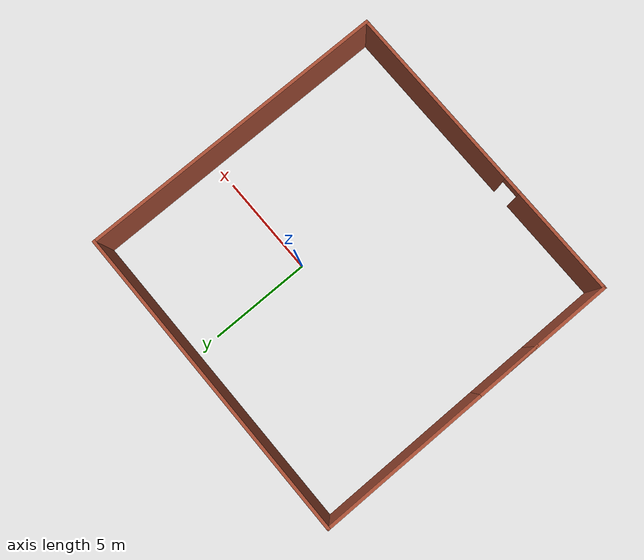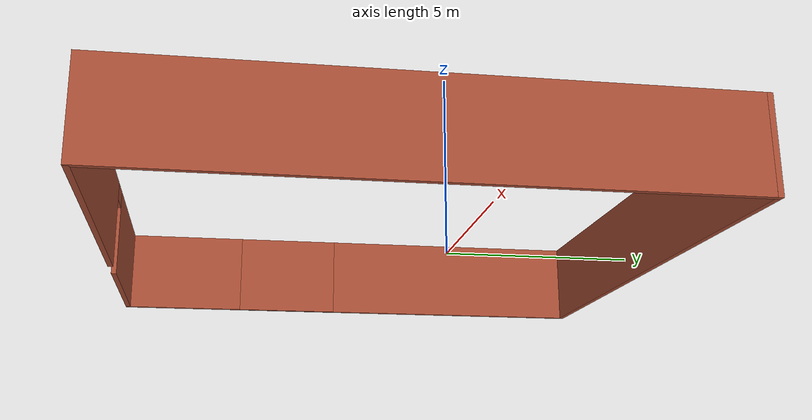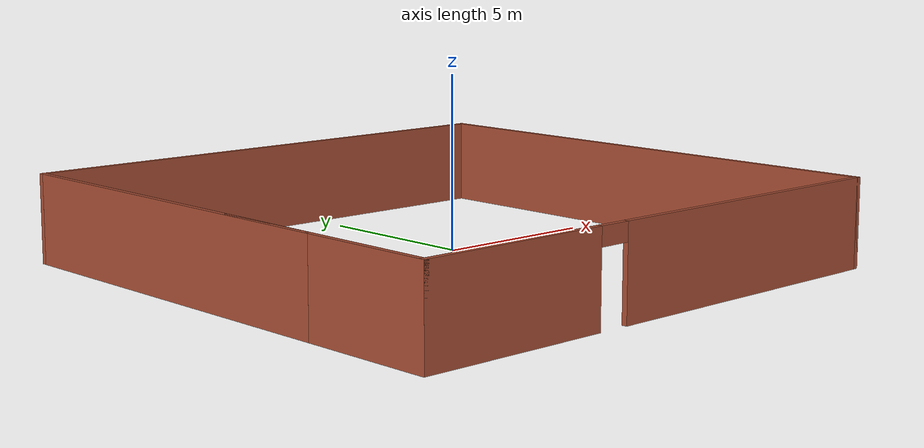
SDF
<?xml version='1.0'?>
<sdf version='1.7'>
  <model name='building.model'>
    <pose>-1.55657 -1.4644 0 0 -0 0</pose>
    <link name='Wall_25'>
      <collision name='Wall_25_Collision'>
        <geometry>
          <box>
            <size>4 0.15 2.5</size>
          </box>
        </geometry>
        <pose>0 0 1.25 0 -0 0</pose>
      </collision>
      <visual name='Wall_25_Visual'>
        <pose>0 0 1.25 0 -0 0</pose>
        <geometry>
          <box>
            <size>4 0.15 2.5</size>
          </box>
        </geometry>
        <material>
          <script>
            <uri>file://media/materials/scripts/gazebo.material</uri>
            <name>Gazebo/Bricks</name>
          </script>
          <ambient>1 1 1 1</ambient>
        </material>
        <meta>
          <layer>0</layer>
        </meta>
      </visual>
      <pose>-7.8 -5.75 0 0 -0 -1.5708</pose>
    </link>
    <link name='Wall_26'>
      <pose>-0 -7.675 0 0 -0 0</pose>
      <visual name='Wall_26_Visual_0'>
        <pose>-5.14489 0 1.25 0 -0 0</pose>
        <geometry>
          <box>
            <size>5.46021 0.15 2.5</size>
          </box>
        </geometry>
        <material>
          <script>
            <uri>file://media/materials/scripts/gazebo.material</uri>
            <name>Gazebo/Bricks</name>
          </script>
          <ambient>1 1 1 1</ambient>
        </material>
        <meta>
          <layer>0</layer>
        </meta>
      </visual>
      <collision name='Wall_26_Collision_0'>
        <geometry>
          <box>
            <size>5.46021 0.15 2.5</size>
          </box>
        </geometry>
        <pose>-5.14489 0 1.25 0 -0 0</pose>
      </collision>
      <visual name='Wall_26_Visual_1'>
        <pose>3.18011 0 1.25 0 -0 0</pose>
        <geometry>
          <box>
            <size>9.38978 0.15 2.5</size>
          </box>
        </geometry>
        <material>
          <script>
            <uri>file://media/materials/scripts/gazebo.material</uri>
            <name>Gazebo/Bricks</name>
          </script>
          <ambient>1 1 1 1</ambient>
        </material>
        <meta>
          <layer>0</layer>
        </meta>
      </visual>
      <collision name='Wall_26_Collision_1'>
        <geometry>
          <box>
            <size>9.38978 0.15 2.5</size>
          </box>
        </geometry>
        <pose>3.18011 0 1.25 0 -0 0</pose>
      </collision>
      <visual name='Wall_26_Visual_2'>
        <pose>-1.96479 0 2.25 0 -0 0</pose>
        <geometry>
          <box>
            <size>0.9 0.15 0.5</size>
          </box>
        </geometry>
        <material>
          <script>
            <uri>file://media/materials/scripts/gazebo.material</uri>
            <name>Gazebo/Bricks</name>
          </script>
          <ambient>1 1 1 1</ambient>
        </material>
        <meta>
          <layer>0</layer>
        </meta>
      </visual>
      <collision name='Wall_26_Collision_2'>
        <geometry>
          <box>
            <size>0.9 0.15 0.5</size>
          </box>
        </geometry>
        <pose>-1.96479 0 2.25 0 -0 0</pose>
      </collision>
    </link>
    <link name='Wall_27'>
      <collision name='Wall_27_Collision'>
        <geometry>
          <box>
            <size>15.5 0.15 2.5</size>
          </box>
        </geometry>
        <pose>0 0 1.25 0 -0 0</pose>
      </collision>
      <visual name='Wall_27_Visual'>
        <pose>0 0 1.25 0 -0 0</pose>
        <geometry>
          <box>
            <size>15.5 0.15 2.5</size>
          </box>
        </geometry>
        <material>
          <script>
            <uri>file://media/materials/scripts/gazebo.material</uri>
            <name>Gazebo/Bricks</name>
          </script>
          <ambient>1 1 1 1</ambient>
        </material>
        <meta>
          <layer>0</layer>
        </meta>
      </visual>
      <pose>7.8 0 0 0 -0 1.5708</pose>
    </link>
    <link name='Wall_28'>
      <collision name='Wall_28_Collision'>
        <geometry>
          <box>
            <size>15.75 0.15 2.5</size>
          </box>
        </geometry>
        <pose>0 0 1.25 0 -0 0</pose>
      </collision>
      <visual name='Wall_28_Visual'>
        <pose>0 0 1.25 0 -0 0</pose>
        <geometry>
          <box>
            <size>15.75 0.15 2.5</size>
          </box>
        </geometry>
        <material>
          <script>
            <uri>file://media/materials/scripts/gazebo.material</uri>
            <name>Gazebo/Bricks</name>
          </script>
          <ambient>1 1 1 1</ambient>
        </material>
        <meta>
          <layer>0</layer>
        </meta>
      </visual>
      <pose>-0 7.675 0 0 -0 3.14159</pose>
    </link>
    <link name='Wall_29'>
      <collision name='Wall_29_Collision'>
        <geometry>
          <box>
            <size>11.65 0.15 2.5</size>
          </box>
        </geometry>
        <pose>0 0 1.25 0 -0 0</pose>
      </collision>
      <visual name='Wall_29_Visual'>
        <pose>0 0 1.25 0 -0 0</pose>
        <geometry>
          <box>
            <size>11.65 0.15 2.5</size>
          </box>
        </geometry>
        <material>
          <script>
            <uri>file://media/materials/scripts/gazebo.material</uri>
            <name>Gazebo/Bricks</name>
          </script>
          <ambient>1 1 1 1</ambient>
        </material>
        <meta>
          <layer>0</layer>
        </meta>
      </visual>
      <pose>-7.8 1.925 0 0 -0 -1.5708</pose>
    </link>
    <link name='Wall_30'>
      <collision name='Wall_30_Collision'>
        <geometry>
          <box>
            <size>3.25 0.15 2.5</size>
          </box>
        </geometry>
        <pose>0 0 1.25 0 -0 0</pose>
      </collision>
      <visual name='Wall_30_Visual'>
        <pose>0 0 1.25 0 -0 0</pose>
        <geometry>
          <box>
            <size>3.25 0.15 2.5</size>
          </box>
        </geometry>
        <material>
          <script>
            <uri>file://media/materials/scripts/gazebo.material</uri>
            <name>Gazebo/Bricks</name>
          </script>
          <ambient>1 1 1 1</ambient>
        </material>
        <meta>
          <layer>0</layer>
        </meta>
      </visual>
      <pose>-7.8 -2.275 0 0 -0 1.5708</pose>
    </link>
    <static>1</static>
  </model>
</sdf>
